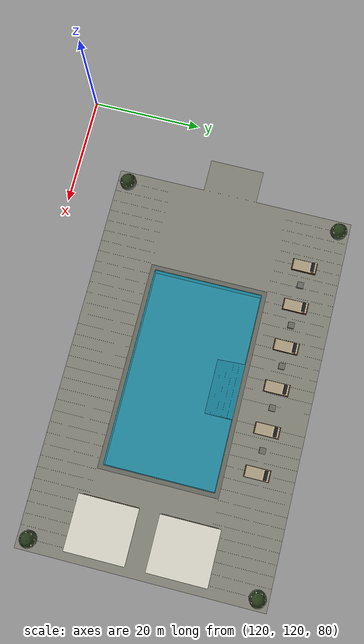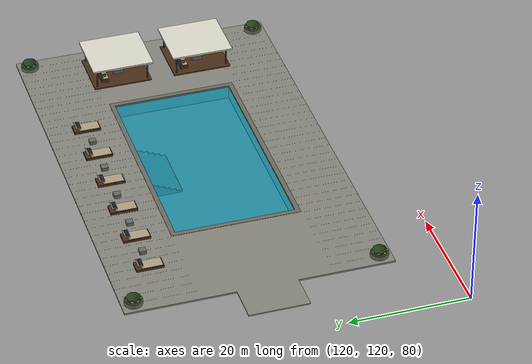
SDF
<?xml version='1.0' encoding='utf-8'?>
<sdf version="1.9">
  <model name="estate_pool">
    <static>true</static>
    <link name="structure">
      <visual name="visual_ivory">
        <geometry>
          <mesh>
            <uri>model://estate_pool/meshes/visual/ivory.dae</uri>
          </mesh>
        </geometry>
        <material>
          <ambient>0.88 0.87 0.81 1</ambient>
          <diffuse>0.88 0.87 0.81 1</diffuse>
          <specular>0.15 0.15 0.15 1</specular>
          <pbr>
            <metal>
              <roughness>0.8</roughness>
              <metalness>0.0</metalness>
            </metal>
          </pbr>
        </material>
      </visual>
      <visual name="visual_paving">
        <geometry>
          <mesh>
            <uri>model://estate_pool/meshes/visual/paving.dae</uri>
          </mesh>
        </geometry>
        <material>
          <ambient>0.53 0.53 0.49 1</ambient>
          <diffuse>0.53 0.53 0.49 1</diffuse>
          <specular>0.15 0.15 0.15 1</specular>
          <pbr>
            <metal>
              <roughness>0.8</roughness>
              <metalness>0.0</metalness>
            </metal>
          </pbr>
        </material>
      </visual>
      <visual name="visual_stone">
        <geometry>
          <mesh>
            <uri>model://estate_pool/meshes/visual/stone.dae</uri>
          </mesh>
        </geometry>
        <material>
          <ambient>0.42 0.43 0.39 1</ambient>
          <diffuse>0.42 0.43 0.39 1</diffuse>
          <specular>0.15 0.15 0.15 1</specular>
          <pbr>
            <metal>
              <roughness>0.8</roughness>
              <metalness>0.0</metalness>
            </metal>
          </pbr>
        </material>
      </visual>
      <visual name="visual_wood">
        <geometry>
          <mesh>
            <uri>model://estate_pool/meshes/visual/wood.dae</uri>
          </mesh>
        </geometry>
        <material>
          <ambient>0.3 0.18 0.095 1</ambient>
          <diffuse>0.3 0.18 0.095 1</diffuse>
          <specular>0.15 0.15 0.15 1</specular>
          <pbr>
            <metal>
              <roughness>0.8</roughness>
              <metalness>0.0</metalness>
            </metal>
          </pbr>
        </material>
      </visual>
      <visual name="visual_metal">
        <geometry>
          <mesh>
            <uri>model://estate_pool/meshes/visual/metal.dae</uri>
          </mesh>
        </geometry>
        <material>
          <ambient>0.21 0.23 0.24 1</ambient>
          <diffuse>0.21 0.23 0.24 1</diffuse>
          <specular>0.15 0.15 0.15 1</specular>
          <pbr>
            <metal>
              <roughness>0.35</roughness>
              <metalness>0.65</metalness>
            </metal>
          </pbr>
        </material>
      </visual>
      <visual name="visual_dark_fabric">
        <geometry>
          <mesh>
            <uri>model://estate_pool/meshes/visual/dark_fabric.dae</uri>
          </mesh>
        </geometry>
        <material>
          <ambient>0.095 0.12 0.14 1</ambient>
          <diffuse>0.095 0.12 0.14 1</diffuse>
          <specular>0.15 0.15 0.15 1</specular>
          <pbr>
            <metal>
              <roughness>0.8</roughness>
              <metalness>0.0</metalness>
            </metal>
          </pbr>
        </material>
      </visual>
      <visual name="visual_fabric">
        <geometry>
          <mesh>
            <uri>model://estate_pool/meshes/visual/fabric.dae</uri>
          </mesh>
        </geometry>
        <material>
          <ambient>0.7 0.64 0.52 1</ambient>
          <diffuse>0.7 0.64 0.52 1</diffuse>
          <specular>0.15 0.15 0.15 1</specular>
          <pbr>
            <metal>
              <roughness>0.8</roughness>
              <metalness>0.0</metalness>
            </metal>
          </pbr>
        </material>
      </visual>
      <visual name="visual_grass_dark">
        <geometry>
          <mesh>
            <uri>model://estate_pool/meshes/visual/grass_dark.dae</uri>
          </mesh>
        </geometry>
        <material>
          <ambient>0.14 0.22 0.085 1</ambient>
          <diffuse>0.14 0.22 0.085 1</diffuse>
          <specular>0.15 0.15 0.15 1</specular>
          <pbr>
            <metal>
              <roughness>0.8</roughness>
              <metalness>0.0</metalness>
            </metal>
          </pbr>
        </material>
      </visual>
      <visual name="visual_leaf2">
        <geometry>
          <mesh>
            <uri>model://estate_pool/meshes/visual/leaf2.dae</uri>
          </mesh>
        </geometry>
        <material>
          <ambient>0.15 0.235 0.105 1</ambient>
          <diffuse>0.15 0.235 0.105 1</diffuse>
          <specular>0.15 0.15 0.15 1</specular>
          <pbr>
            <metal>
              <roughness>0.8</roughness>
              <metalness>0.0</metalness>
            </metal>
          </pbr>
        </material>
      </visual>
      <visual name="visual_pool_water">
        <geometry>
          <mesh>
            <uri>model://estate_pool/meshes/visual/pool_water.dae</uri>
          </mesh>
        </geometry>
        <material>
          <ambient>0.08 0.56 0.67 1</ambient>
          <diffuse>0.08 0.56 0.67 1</diffuse>
          <specular>0.15 0.15 0.15 1</specular>
          <pbr>
            <metal>
              <roughness>0.16</roughness>
              <metalness>0.0</metalness>
            </metal>
          </pbr>
        </material>
        <transparency>0.13</transparency>
        <cast_shadows>false</cast_shadows>
      </visual>
      <visual name="visual_white">
        <geometry>
          <mesh>
            <uri>model://estate_pool/meshes/visual/white.dae</uri>
          </mesh>
        </geometry>
        <material>
          <ambient>0.93 0.93 0.89 1</ambient>
          <diffuse>0.93 0.93 0.89 1</diffuse>
          <specular>0.15 0.15 0.15 1</specular>
          <pbr>
            <metal>
              <roughness>0.8</roughness>
              <metalness>0.0</metalness>
            </metal>
          </pbr>
        </material>
      </visual>
      <collision name="pool_floor">
        <geometry>
          <box>
            <size>36.8 20.8 0.36</size>
          </box>
        </geometry>
        <pose>167 149 77.52 0 0 0</pose>
      </collision>
      <collision name="pool_west_wall">
        <geometry>
          <box>
            <size>0.4 20.8 2.6</size>
          </box>
        </geometry>
        <pose>148.8 149 78.88 0 0 0</pose>
      </collision>
      <collision name="pool_east_wall">
        <geometry>
          <box>
            <size>0.4 20.8 2.6</size>
          </box>
        </geometry>
        <pose>185.2 149 78.88 0 0 0</pose>
      </collision>
      <collision name="pool_south_wall">
        <geometry>
          <box>
            <size>36 0.4 2.6</size>
          </box>
        </geometry>
        <pose>167 138.8 78.88 0 0 0</pose>
      </collision>
      <collision name="pool_north_wall">
        <geometry>
          <box>
            <size>36 0.4 2.6</size>
          </box>
        </geometry>
        <pose>167 159.2 78.88 0 0 0</pose>
      </collision>
      <collision name="pool_entry_step_0">
        <geometry>
          <box>
            <size>10 1 2.18</size>
          </box>
        </geometry>
        <pose>167 158.5 78.79 0 0 0</pose>
      </collision>
      <collision name="pool_entry_step_1">
        <geometry>
          <box>
            <size>10 1 1.74</size>
          </box>
        </geometry>
        <pose>167 157.5 78.57 0 0 0</pose>
      </collision>
      <collision name="pool_entry_step_2">
        <geometry>
          <box>
            <size>10 1 1.3</size>
          </box>
        </geometry>
        <pose>167 156.5 78.35 0 0 0</pose>
      </collision>
      <collision name="pool_entry_step_3">
        <geometry>
          <box>
            <size>10 1 0.86</size>
          </box>
        </geometry>
        <pose>167 155.5 78.13 0 0 0</pose>
      </collision>
      <collision name="pool_entry_step_4">
        <geometry>
          <box>
            <size>10 1 0.42</size>
          </box>
        </geometry>
        <pose>167 154.5 77.91 0 0 0</pose>
      </collision>
      <collision name="pool_west_coping">
        <geometry>
          <box>
            <size>0.8 21.6 0.24</size>
          </box>
        </geometry>
        <pose>148.6 149 80.11 0 0 0</pose>
      </collision>
      <collision name="pool_east_coping">
        <geometry>
          <box>
            <size>0.8 21.6 0.24</size>
          </box>
        </geometry>
        <pose>185.4 149 80.11 0 0 0</pose>
      </collision>
      <collision name="pool_south_coping">
        <geometry>
          <box>
            <size>36 0.8 0.24</size>
          </box>
        </geometry>
        <pose>167 138.6 80.11 0 0 0</pose>
      </collision>
      <collision name="pool_north_coping">
        <geometry>
          <box>
            <size>36 0.8 0.24</size>
          </box>
        </geometry>
        <pose>167 159.4 80.11 0 0 0</pose>
      </collision>
      <collision name="pool_deck_south">
        <geometry>
          <box>
            <size>70 10.2 0.3</size>
          </box>
        </geometry>
        <pose>167 133.1 80.03 0 0 0</pose>
      </collision>
      <collision name="pool_deck_north">
        <geometry>
          <box>
            <size>70 12.2 0.3</size>
          </box>
        </geometry>
        <pose>167 165.9 80.03 0 0 0</pose>
      </collision>
      <collision name="pool_deck_west">
        <geometry>
          <box>
            <size>16.2 21.6 0.3</size>
          </box>
        </geometry>
        <pose>140.1 149 80.03 0 0 0</pose>
      </collision>
      <collision name="pool_deck_east">
        <geometry>
          <box>
            <size>16.2 21.6 0.3</size>
          </box>
        </geometry>
        <pose>193.9 149 80.03 0 0 0</pose>
      </collision>
      <collision name="lounger_0_frame">
        <geometry>
          <box>
            <size>2.1 4.5 0.44</size>
          </box>
        </geometry>
        <pose>142 165.3 80.45 0 0 0</pose>
      </collision>
      <collision name="lounger_table_0">
        <geometry>
          <box>
            <size>1.1 1.1 0.65</size>
          </box>
        </geometry>
        <pose>145.6 165.3 80.5 0 0 0</pose>
      </collision>
      <collision name="lounger_1_frame">
        <geometry>
          <box>
            <size>2.1 4.5 0.44</size>
          </box>
        </geometry>
        <pose>149.6 165.3 80.45 0 0 0</pose>
      </collision>
      <collision name="lounger_table_1">
        <geometry>
          <box>
            <size>1.1 1.1 0.65</size>
          </box>
        </geometry>
        <pose>153.2 165.3 80.5 0 0 0</pose>
      </collision>
      <collision name="lounger_2_frame">
        <geometry>
          <box>
            <size>2.1 4.5 0.44</size>
          </box>
        </geometry>
        <pose>157.2 165.3 80.45 0 0 0</pose>
      </collision>
      <collision name="lounger_table_2">
        <geometry>
          <box>
            <size>1.1 1.1 0.65</size>
          </box>
        </geometry>
        <pose>160.8 165.3 80.5 0 0 0</pose>
      </collision>
      <collision name="lounger_3_frame">
        <geometry>
          <box>
            <size>2.1 4.5 0.44</size>
          </box>
        </geometry>
        <pose>164.8 165.3 80.45 0 0 0</pose>
      </collision>
      <collision name="lounger_table_3">
        <geometry>
          <box>
            <size>1.1 1.1 0.65</size>
          </box>
        </geometry>
        <pose>168.4 165.3 80.5 0 0 0</pose>
      </collision>
      <collision name="lounger_4_frame">
        <geometry>
          <box>
            <size>2.1 4.5 0.44</size>
          </box>
        </geometry>
        <pose>172.4 165.3 80.45 0 0 0</pose>
      </collision>
      <collision name="lounger_table_4">
        <geometry>
          <box>
            <size>1.1 1.1 0.65</size>
          </box>
        </geometry>
        <pose>176 165.3 80.5 0 0 0</pose>
      </collision>
      <collision name="lounger_5_frame">
        <geometry>
          <box>
            <size>2.1 4.5 0.44</size>
          </box>
        </geometry>
        <pose>180 165.3 80.45 0 0 0</pose>
      </collision>
      <collision name="cabana_0_platform">
        <geometry>
          <box>
            <size>9 10 0.22</size>
          </box>
        </geometry>
        <pose>195 142 80.28 0 0 0</pose>
      </collision>
      <collision name="cabana_0_post_-3.9_-4.4">
        <geometry>
          <box>
            <size>0.2 0.2 3.6</size>
          </box>
        </geometry>
        <pose>191.1 137.6 81.96 0 0 0</pose>
      </collision>
      <collision name="cabana_0_post_-3.9_4.4">
        <geometry>
          <box>
            <size>0.2 0.2 3.6</size>
          </box>
        </geometry>
        <pose>191.1 146.4 81.96 0 0 0</pose>
      </collision>
      <collision name="cabana_0_post_3.9_-4.4">
        <geometry>
          <box>
            <size>0.2 0.2 3.6</size>
          </box>
        </geometry>
        <pose>198.9 137.6 81.96 0 0 0</pose>
      </collision>
      <collision name="cabana_0_post_3.9_4.4">
        <geometry>
          <box>
            <size>0.2 0.2 3.6</size>
          </box>
        </geometry>
        <pose>198.9 146.4 81.96 0 0 0</pose>
      </collision>
      <collision name="cabana_0_roof">
        <geometry>
          <box>
            <size>9.6 10.5 0.3</size>
          </box>
        </geometry>
        <pose>195 142 83.9 0 0 0</pose>
      </collision>
      <collision name="cabana_0_sofa_base">
        <geometry>
          <box>
            <size>6.4 1.3 0.58</size>
          </box>
        </geometry>
        <pose>195 144.8 80.75 0 0 0</pose>
      </collision>
      <collision name="cabana_0_sofa_back">
        <geometry>
          <box>
            <size>6.4 0.19 1</size>
          </box>
        </geometry>
        <pose>195 145.36 81.44 0 0 0</pose>
      </collision>
      <collision name="cabana_0_table">
        <geometry>
          <box>
            <size>2.8 1.8 0.6</size>
          </box>
        </geometry>
        <pose>195 142 80.82 0 0 0</pose>
      </collision>
      <collision name="cabana_1_platform">
        <geometry>
          <box>
            <size>9 10 0.22</size>
          </box>
        </geometry>
        <pose>195 156 80.28 0 0 0</pose>
      </collision>
      <collision name="cabana_1_post_-3.9_-4.4">
        <geometry>
          <box>
            <size>0.2 0.2 3.6</size>
          </box>
        </geometry>
        <pose>191.1 151.6 81.96 0 0 0</pose>
      </collision>
      <collision name="cabana_1_post_-3.9_4.4">
        <geometry>
          <box>
            <size>0.2 0.2 3.6</size>
          </box>
        </geometry>
        <pose>191.1 160.4 81.96 0 0 0</pose>
      </collision>
      <collision name="cabana_1_post_3.9_-4.4">
        <geometry>
          <box>
            <size>0.2 0.2 3.6</size>
          </box>
        </geometry>
        <pose>198.9 151.6 81.96 0 0 0</pose>
      </collision>
      <collision name="cabana_1_post_3.9_4.4">
        <geometry>
          <box>
            <size>0.2 0.2 3.6</size>
          </box>
        </geometry>
        <pose>198.9 160.4 81.96 0 0 0</pose>
      </collision>
      <collision name="cabana_1_roof">
        <geometry>
          <box>
            <size>9.6 10.5 0.3</size>
          </box>
        </geometry>
        <pose>195 156 83.9 0 0 0</pose>
      </collision>
      <collision name="cabana_1_sofa_base">
        <geometry>
          <box>
            <size>6.4 1.3 0.58</size>
          </box>
        </geometry>
        <pose>195 158.8 80.75 0 0 0</pose>
      </collision>
      <collision name="cabana_1_sofa_back">
        <geometry>
          <box>
            <size>6.4 0.19 1</size>
          </box>
        </geometry>
        <pose>195 159.36 81.44 0 0 0</pose>
      </collision>
      <collision name="cabana_1_table">
        <geometry>
          <box>
            <size>2.8 1.8 0.6</size>
          </box>
        </geometry>
        <pose>195 156 80.82 0 0 0</pose>
      </collision>
      <collision name="pool_planter_0">
        <geometry>
          <cylinder>
            <radius>1.5</radius>
            <length>0.72</length>
          </cylinder>
        </geometry>
        <pose>134 130 80.56 0 0 0</pose>
      </collision>
      <collision name="pool_planter_1">
        <geometry>
          <cylinder>
            <radius>1.5</radius>
            <length>0.72</length>
          </cylinder>
        </geometry>
        <pose>134 170 80.56 0 0 0</pose>
      </collision>
      <collision name="pool_planter_2">
        <geometry>
          <cylinder>
            <radius>1.5</radius>
            <length>0.72</length>
          </cylinder>
        </geometry>
        <pose>200 130 80.56 0 0 0</pose>
      </collision>
      <collision name="pool_planter_3">
        <geometry>
          <cylinder>
            <radius>1.5</radius>
            <length>0.72</length>
          </cylinder>
        </geometry>
        <pose>200 170 80.56 0 0 0</pose>
      </collision>
      <collision name="villa_pool_link">
        <geometry>
          <box>
            <size>6 10 0.2</size>
          </box>
        </geometry>
        <pose>129 149 80.1 0 0 0</pose>
      </collision>
    </link>
  </model>
</sdf>
